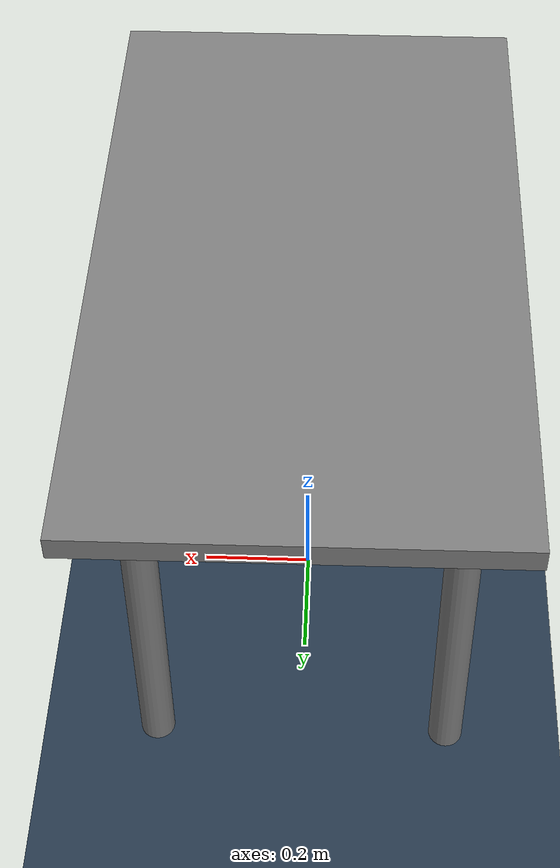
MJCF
<mujoco model="table_arena">
  <asset>
    <texture builtin="gradient" height="256" rgb1=".9 .9 1." rgb2=".2 .3 .4" type="skybox" width="256"/>
    <texture builtin="checker" height="512" name="texplane" rgb1=".2 .3 .4" rgb2=".1 0.15 0.2" type="2d" width="512"/>
    <texture file="/home/geonhyup/Desktop/Research/open-sim-mujoco/models/assets/textures/light-wood.png" type="2d" name="tex-light-wood"/>
    <texture file="/home/geonhyup/Desktop/Research/open-sim-mujoco/models/assets/textures/metal.png" type="2d" name="tex-dark-wood"/>
    <material name="light-wood" reflectance="0.5" texrepeat="15 15" texture="tex-light-wood" texuniform="true"/>
    <material name="metal" reflectance="0.5" texrepeat="5 5" texture="tex-dark-wood" texuniform="true"/>
    <material name="floorplane" reflectance="0.5" texrepeat="1 1" texture="texplane" texuniform="true"/>
  </asset>
  <worldbody>
    <geom condim="3" material="floorplane" name="floor" pos="0 0 0" size="3 3 .125" type="plane"/>
    <body name="table" pos="0 0 0.8">
      <geom pos="0 0 0" size="0.35 0.6 0.02" type="box" friction="1 0.005 0.0001" name="table_collision"/>
      <geom pos="0 0 0" material="light-wood" size="0.35 0.6 0.02" type="box" conaffinity="0" contype="0" group="1" name="table_view"/>
    </body>
    <body name="table_legs" pos="0 0 0">
      <geom pos="-0.26 0.38 0.4" size="0.03 0.4" type="cylinder" friction="1 0.005 0.0001" name="leg1_collision"/>
      <geom pos="-0.26 0.38 0.4" material="metal" size="0.03 0.4" type="cylinder" conaffinity="0" contype="0" group="1" name="leg1"/>
      <geom pos="0.26 0.38 0.4" size="0.03 0.4" type="cylinder" friction="1 0.005 0.0001" name="leg2_collision"/>
      <geom pos="0.26 0.38 0.4" material="metal" size="0.03 0.4" type="cylinder" conaffinity="0" contype="0" group="1" name="leg2"/>
      <geom pos="-0.26 -0.38 0.4" size="0.03 0.4" type="cylinder" friction="1 0.005 0.0001" name="leg3_collision"/>
      <geom pos="-0.26 -0.38 0.4" material="metal" size="0.03 0.4" type="cylinder" conaffinity="0" contype="0" group="1" name="leg3"/>
      <geom pos="0.26 -0.38 0.4" size="0.03 0.4" type="cylinder" friction="1 0.005 0.0001" name="leg4_collision"/>
      <geom pos="0.26 -0.38 0.4" material="metal" size="0.03 0.4" type="cylinder" conaffinity="0" contype="0" group="1" name="leg4"/>
    </body>
    <light diffuse=".8 .8 .8" dir="0 -.15 -1" directional="false" pos="1 1 4.0" specular="0.3 0.3 0.3" castshadow="false"/>
    <light diffuse=".8 .8 .8" dir="0 -.15 -1" directional="false" pos="-3. -3. 4.0" specular="0.3 0.3 0.3" castshadow="false"/>
    <!-- front view -->
    <camera mode="fixed" name="frontview" pos="1.6 0.15 1.45" quat="0.56 0.43 0.43 0.56"/>
    <!-- bird view -->
    <camera mode="fixed" name="birdview" pos="-0.2 0.15 3.0" quat="0.7071 0 0 0.7071"/>
    <!-- agent view -->
    <camera mode="fixed" name="agentview" pos="0.8 0.15 1.65" quat="0.653 0.271 0.271 0.653"/>
  </worldbody>
</mujoco>
